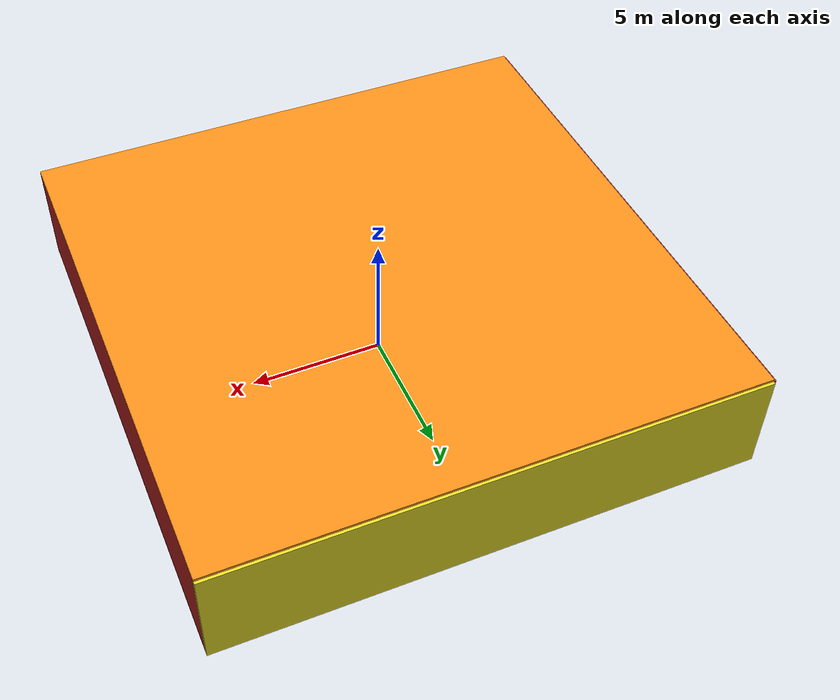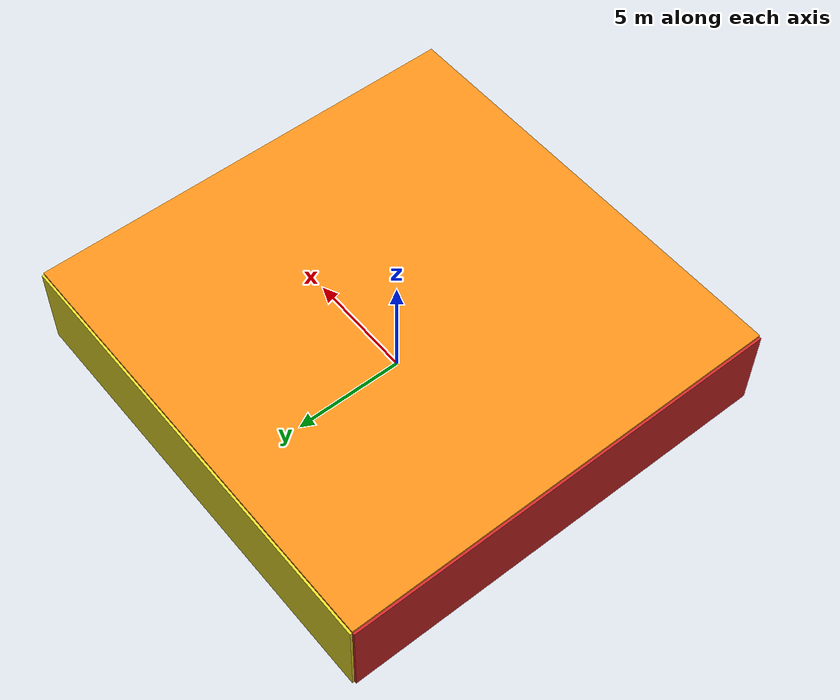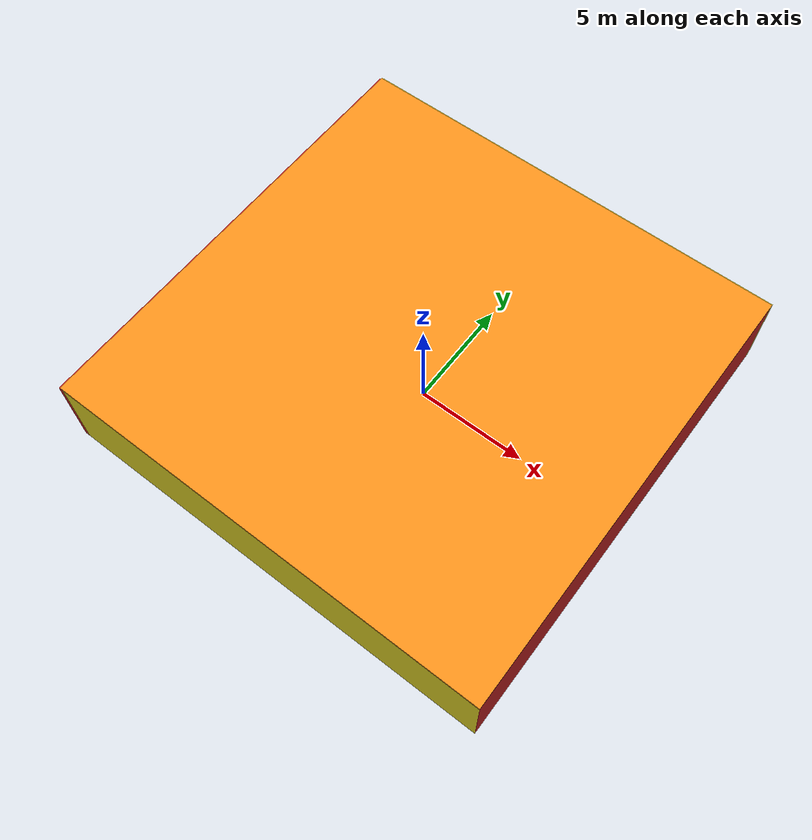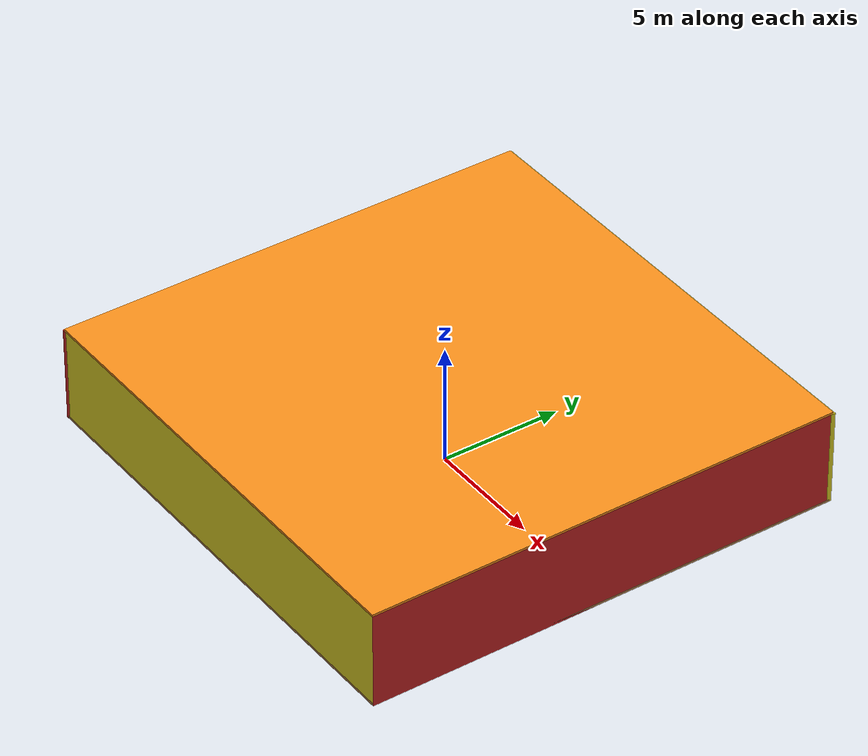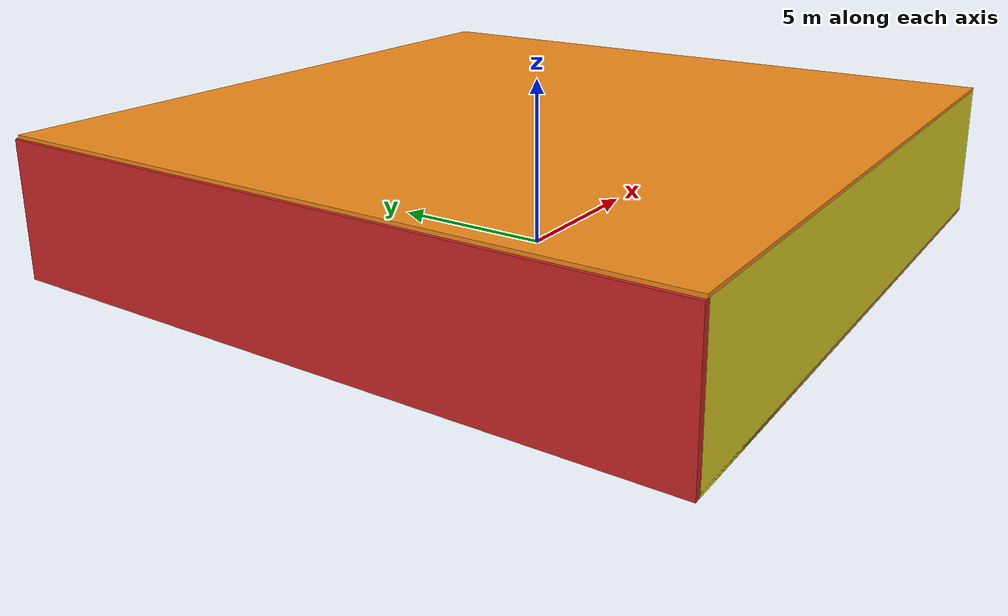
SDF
<sdf version="1.4">
 <world name="default">
  <physics type="ode">
   <max_step_size>0.001</max_step_size>
   <real_time_factor>1</real_time_factor>
   <real_time_update_rate>1000</real_time_update_rate>
   <gravity>0 0 -9.8</gravity>
  </physics>
  <scene><ambient>0.4 0.4 0.4 1</ambient><background>0.7 0.7 0.7 1</background><shadows>1</shadows></scene>
  <model name="Surrounding">
   <static>1</static>
   <link name="Ceiling">
    <collision name="Ceiling_Collision"><geometry><box><size>20 20 0.1</size></box></geometry></collision>
    <visual name="Ceiling_Visual">
     <geometry><box><size>20 20 0.1</size></box></geometry>
     <material>
      <script><uri>file://media/materials/scripts/gazebo.material</uri><name>Gazebo/Orange</name></script>
     </material>
    </visual>
    <pose>0 0 4.05 0 0 0</pose>
   </link>
   <link name="Wall_South">
    <collision name="Wall_South_Collision">
     <geometry><box><size>20 0 4</size></box></geometry>
     <pose>0 0 2 0 -0 0</pose>
    </collision>
    <visual name="Wall_South_Visual">
     <pose>0 0 2 0 -0 0</pose>
     <geometry><box><size>20 0 4</size></box></geometry>
     <material>
      <script><uri>file://media/materials/scripts/gazebo.material</uri><name>Gazebo/YellowGlow</name></script>
     </material>
    </visual>
    <velocity_decay><linear>0</linear><angular>0</angular></velocity_decay>
    <pose>0 -10 0 0 -0 0</pose>
   </link>
   <link name="Wall_East">
    <collision name="Wall_21_Collision">
     <geometry><box><size>20 0 4</size></box></geometry>
     <pose>0 0 2 0 -0 0</pose>
    </collision>
    <visual name="Wall_21_Visual">
     <pose>0 0 2 0 -0 0</pose>
     <geometry><box><size>20 0 4</size></box></geometry>
     <material>
      <script><uri>file://media/materials/scripts/gazebo.material</uri><name>Gazebo/RedBright</name></script>
     </material>
    </visual>
    <velocity_decay><linear>0</linear><angular>0</angular></velocity_decay>
    <pose>10 0 0 0 -0 1.5708</pose>
   </link>
   <link name="Wall_North">
    <collision name="Wall_22_Collision">
     <geometry><box><size>20 0.2 4</size></box></geometry>
     <pose>0 0 2 0 -0 0</pose>
    </collision>
    <visual name="Wall_22_Visual">
     <pose>0 0 2 0 -0 0</pose>
     <geometry><box><size>20 0.2 4</size></box></geometry>
     <material>
      <script><uri>file://media/materials/scripts/gazebo.material</uri><name>Gazebo/Yellow</name></script>
     </material>
    </visual>
    <velocity_decay><linear>0</linear><angular>0</angular></velocity_decay>
    <pose>0 10 0 0 -0 0</pose>
   </link>
   <link name="Wall_West">
    <collision name="Wall_23_Collision">
     <geometry><box><size>20 0.2 4</size></box></geometry>
     <pose>0 0 2 0 -0 0</pose>
    </collision>
    <visual name="Wall_23_Visual">
     <pose>0 0 2 0 -0 0</pose>
     <geometry><box><size>20 0.2 4</size></box></geometry>
     <material>
      <script><uri>file://media/materials/scripts/gazebo.material</uri><name>Gazebo/Red</name></script>
     </material>
    </visual>
    <velocity_decay><linear>0</linear><angular>0</angular></velocity_decay>
    <pose>-10 0 0 0 0 -1.5708</pose>
   </link>
   <link name="Ground_link">
    <collision name="collision">
     <pose>0 0 .05 0 -0 0</pose>
     <geometry><box><size>20 20 0.1</size></box></geometry>
    </collision>
    <visual name="visual">
     <pose>0 0 .05 0 -0 0</pose>
     <geometry><box><size>20 20 0.1</size></box></geometry>
     <material>
      <script><uri>file://media/materials/scripts/gazebo.material</uri><name>Gazebo/Wood</name></script>
     </material>
    </visual>
   </link>
   <static>1</static>
  </model>
  <spherical_coordinates>
   <surface_model>EARTH_WGS84</surface_model>
   <latitude_deg>0</latitude_deg>
   <longitude_deg>0</longitude_deg>
   <elevation>0</elevation>
   <heading_deg>0</heading_deg>
  </spherical_coordinates>
  <light name="lightball_0" type="diffuse">
   <diffuse>0.8 0.8 0.8 1</diffuse>
   <specular>0.2 0.2 0.2 1</specular>
   <attenuation>
    <range>100</range>
    <constant>0.7</constant>
    <linear>0.01</linear>
    <quadratic>0.001</quadratic>
   </attenuation>
   <direction>-0.5 0.1 -0.9</direction>
   <pose>-2.54640726884 0.901653164756 2.45208362192 0 0 0</pose>
  </light>
  <light name="lightball_1" type="diffuse">
   <diffuse>0.8 0.8 0.8 1</diffuse>
   <specular>0.2 0.2 0.2 1</specular>
   <attenuation>
    <range>100</range>
    <constant>0.7</constant>
    <linear>0.01</linear>
    <quadratic>0.001</quadratic>
   </attenuation>
   <direction>-0.5 0.1 -0.9</direction>
   <pose>-7.29291111571 8.48197829202 2.81653051402 0 0 0</pose>
  </light>
  <light name="lightball_2" type="diffuse">
   <diffuse>0.8 0.8 0.8 1</diffuse>
   <specular>0.2 0.2 0.2 1</specular>
   <attenuation>
    <range>100</range>
    <constant>0.7</constant>
    <linear>0.01</linear>
    <quadratic>0.001</quadratic>
   </attenuation>
   <direction>-0.5 0.1 -0.9</direction>
   <pose>-5.95249671 6.45944621787 2.65734745327 0 0 0</pose>
  </light>
  <light name="lightball_3" type="diffuse">
   <diffuse>0.8 0.8 0.8 1</diffuse>
   <specular>0.2 0.2 0.2 1</specular>
   <attenuation>
    <range>100</range>
    <constant>0.7</constant>
    <linear>0.01</linear>
    <quadratic>0.001</quadratic>
   </attenuation>
   <direction>-0.5 0.1 -0.9</direction>
   <pose>-0.462185788272 1.4933439312 1.75337291283 0 0 0</pose>
  </light>
  <light name="lightball_4" type="diffuse">
   <diffuse>0.8 0.8 0.8 1</diffuse>
   <specular>0.2 0.2 0.2 1</specular>
   <attenuation>
    <range>100</range>
    <constant>0.7</constant>
    <linear>0.01</linear>
    <quadratic>0.001</quadratic>
   </attenuation>
   <direction>-0.5 0.1 -0.9</direction>
   <pose>4.48885098151 -9.65164544225 2.28325655709 0 0 0</pose>
  </light>
  <include><uri>model://cabinet</uri><pose>-5.38303633006 -6.84288759186 0 0 0 1.2861922675</pose></include>
  <include><uri>model://cabinet</uri><pose>3.34900752067 -1.99221612651 0 0 0 0.712915403425</pose></include>
  <include>
   <uri>model://robocup_3Dsim_goal</uri>
   <pose>7.13336671561 0.480824668616 0 0 0 0.373148641911</pose>
  </include>
 </world>
</sdf>

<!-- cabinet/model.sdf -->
<sdf version="1.5">
  <model name="cabinet">
    <static>true</static>
    <link name="cabinet_bottom_plate">
      <inertial>
        <pose>0 0 -1 0 0 0</pose>
        <inertia>
          <ixx>2.050000</ixx>
          <ixy>0</ixy>
          <ixz>0</ixz>
          <iyy>2.050000</iyy>
          <iyz>0</iyz>
          <izz>2.050000</izz>
        </inertia>
        <mass>25.000000</mass>
      </inertial>
      <collision name="cabinet_bottom_plate_geom">
        <pose>0 0 0.010000 0 0 0</pose>
        <geometry>
          <box>
            <size>0.450000 0.450000 0.020000</size>
          </box>
        </geometry>
      </collision>
      <visual name="cabinet_bottom_plate_geom_visual">
        <pose>0 0 0.010000 0 0 0</pose>
        <geometry>
          <box>
            <size>0.450000 0.450000 0.020000</size>
          </box>
        </geometry>
        <material>
          <script>
            <uri>model://media/materials/scripts/gazebo.material</uri>
            <name>Gazebo/Wood</name>
          </script>
        </material>
      </visual>
      <collision name="cabinet_bottom_plate_geom_cabinet_back_plate">
        <pose>0.235000 0 0.510000 0 0 0</pose>
        <geometry>
          <box>
            <size>0.020000 0.450000 1.020000</size>
          </box>
        </geometry>
      </collision>
      <visual name="cabinet_bottom_plate_geom_cabinet_back_plate_visual">
        <pose>0.235000 0 0.510000 0 0 0</pose>
        <geometry>
          <box>
            <size>0.020000 0.450000 1.020000</size>
          </box>
        </geometry>
        <material>
          <script>
            <uri>model://media/materials/scripts/gazebo.material</uri>
            <name>Gazebo/Wood</name>
          </script>
        </material>
      </visual>
      <collision name="cabinet_bottom_plate_geom_cabinet_left_plate">
        <pose>0 0.235000 0.510000 0 0 0</pose>
        <geometry>
          <box>
            <size>0.450000 0.020000 1.020000</size>
          </box>
        </geometry>
      </collision>
      <visual name="cabinet_bottom_plate_geom_cabinet_left_plate_visual">
        <pose>0 0.235000 0.510000 0 0 0</pose>
        <geometry>
          <box>
            <size>0.450000 0.020000 1.020000</size>
          </box>
        </geometry>
        <material>
          <script>
            <uri>model://media/materials/scripts/gazebo.material</uri>
            <name>Gazebo/Wood</name>
          </script>
        </material>
      </visual>
      <collision name="cabinet_bottom_plate_geom_cabinet_middle_plate">
        <pose>0 0 0.510000 0 0 0</pose>
        <geometry>
          <box>
            <size>0.450000 0.450000 0.020000</size>
          </box>
        </geometry>
      </collision>
      <visual name="cabinet_bottom_plate_geom_cabinet_middle_plate_visual">
        <pose>0 0 0.510000 0 0 0</pose>
        <geometry>
          <box>
            <size>0.450000 0.450000 0.020000</size>
          </box>
        </geometry>
        <material>
          <script>
            <uri>model://media/materials/scripts/gazebo.material</uri>
            <name>Gazebo/Wood</name>
          </script>
        </material>
      </visual>
      <collision name="cabinet_bottom_plate_geom_cabinet_right_plate">
        <pose>0 -0.235000 0.510000 0 0 0</pose>
        <geometry>
          <box>
            <size>0.450000 0.020000 1.020000</size>
          </box>
        </geometry>
      </collision>
      <visual name="cabinet_bottom_plate_geom_cabinet_right_plate_visual">
        <pose>0 -0.235000 0.510000 0 0 0</pose>
        <geometry>
          <box>
            <size>0.450000 0.020000 1.020000</size>
          </box>
        </geometry>
        <material>
          <script>
            <uri>model://media/materials/scripts/gazebo.material</uri>
            <name>Gazebo/Wood</name>
          </script>
        </material>
      </visual>
      <collision name="cabinet_bottom_plate_geom_cabinet_top_plate">
        <pose>0 0 1.010000 0 0 0</pose>
        <geometry>
          <box>
            <size>0.450000 0.450000 0.020000</size>
          </box>
        </geometry>
      </collision>
      <visual name="cabinet_bottom_plate_geom_cabinet_top_plate_visual">
        <pose>0 0 1.010000 0 0 0</pose>
        <geometry>
          <box>
            <size>0.450000 0.450000 0.020000</size>
          </box>
        </geometry>
        <material>
          <script>
            <uri>model://media/materials/scripts/gazebo.material</uri>
            <name>Gazebo/Wood</name>
          </script>
        </material>
      </visual>
    </link>
  </model>
</sdf>

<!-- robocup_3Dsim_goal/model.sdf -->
<sdf version="1.5">
  <model name="robocup_3d_goal">
    <static>true</static>
    <link name="left_post">
      <pose>0 1.05 0.45 0 0 0</pose>
      <collision name="collision">
        <geometry>
          <cylinder>
            <radius>0.05</radius>
            <length>0.9</length>
          </cylinder>
        </geometry>
      </collision>
      <visual name="visual">
        <geometry>
          <cylinder>
            <radius>0.05</radius>
            <length>0.9</length>
          </cylinder>
        </geometry>
        <material>
          <script>
            <uri>file://media/materials/scripts/gazebo.material</uri>
            <name>Gazebo/ZincYellow</name>
          </script>
        </material>
      </visual>
    </link>
    <link name="left_support_horiz_lower">
      <pose>0.30 1.05 0.01 0 0 0</pose>
      <collision name="collision">
        <geometry>
          <box>
            <size>0.50 0.02 0.02</size>
          </box>
        </geometry>
      </collision>
      <visual name="visual">
        <geometry>
          <box>
            <size>0.50 0.02 0.02</size>
          </box>
        </geometry>
        <material>
          <script>
            <uri>file://media/materials/scripts/gazebo.material</uri>
            <name>Gazebo/White</name>
          </script>
        </material>
      </visual>
    </link>
    <link name="left_support_horiz_upper">
      <pose>0.30 1.05 0.79 0 0 0</pose>
      <collision name="collision">
        <geometry>
          <box>
            <size>0.50 0.02 0.02</size>
          </box>
        </geometry>
      </collision>
      <visual name="visual">
        <geometry>
          <box>
            <size>0.50 0.02 0.02</size>
          </box>
        </geometry>
        <material>
          <script>
            <uri>file://media/materials/scripts/gazebo.material</uri>
            <name>Gazebo/White</name>
          </script>
        </material>
      </visual>
    </link>
    <link name="left_support_vertical">
      <pose>0.56 1.05 0.4 0 1.5708 0</pose>
      <collision name="collision">
        <geometry>
          <box>
            <size>0.80 0.02 0.02</size>
          </box>
        </geometry>
      </collision>
      <visual name="visual">
        <geometry>
          <box>
            <size>0.80 0.02 0.02</size>
          </box>
        </geometry>
        <material>
          <script>
            <uri>file://media/materials/scripts/gazebo.material</uri>
            <name>Gazebo/White</name>
          </script>
        </material>
      </visual>
    </link>
    <link name="right_support_horiz_lower">
      <pose>0.30 -1.05 0.01 0 0 0</pose>
      <collision name="collision">
        <geometry>
          <box>
            <size>0.50 0.02 0.02</size>
          </box>
        </geometry>
      </collision>
      <visual name="visual">
        <geometry>
          <box>
            <size>0.50 0.02 0.02</size>
          </box>
        </geometry>
        <material>
          <script>
            <uri>file://media/materials/scripts/gazebo.material</uri>
            <name>Gazebo/White</name>
          </script>
        </material>
      </visual>
    </link>
    <link name="right_support_horiz_upper">
      <pose>0.30 -1.05 0.79 0 0 0</pose>
      <collision name="collision">
        <geometry>
          <box>
            <size>0.50 0.02 0.02</size>
          </box>
        </geometry>
      </collision>
      <visual name="visual">
        <geometry>
          <box>
            <size>0.50 0.02 0.02</size>
          </box>
        </geometry>
        <material>
          <script>
            <uri>file://media/materials/scripts/gazebo.material</uri>
            <name>Gazebo/White</name>
          </script>
        </material>
      </visual>
    </link>
    <link name="right_support_vertical">
      <pose>0.56 -1.05 0.4 0 1.5708 0</pose>
      <collision name="collision">
        <geometry>
          <box>
            <size>0.80 0.02 0.02</size>
          </box>
        </geometry>
      </collision>
      <visual name="visual">
        <geometry>
          <box>
            <size>0.80 0.02 0.02</size>
          </box>
        </geometry>
        <material>
          <script>
            <uri>file://media/materials/scripts/gazebo.material</uri>
            <name>Gazebo/White</name>
          </script>
        </material>
      </visual>
    </link>
    <link name="center_support_horiz_lower">
      <pose>0.56 0 0.01 0 1.5708 0</pose>
      <collision name="collision">
        <geometry>
          <box>
            <size>0.02 2.08 0.02</size>
          </box>
        </geometry>
      </collision>
      <visual name="visual">
        <geometry>
          <box>
            <size>0.02 2.08 0.02</size>
          </box>
        </geometry>
        <material>
          <script>
            <uri>file://media/materials/scripts/gazebo.material</uri>
            <name>Gazebo/White</name>
          </script>
        </material>
      </visual>
    </link>
    <link name="center_support_horiz_upper">
      <pose>0.56 0 0.79 0 1.5708 0</pose>
      <collision name="collision">
        <geometry>
          <box>
            <size>0.02 2.08 0.02</size>
          </box>
        </geometry>
      </collision>
      <visual name="visual">
        <geometry>
          <box>
            <size>0.02 2.08 0.02</size>
          </box>
        </geometry>
        <material>
          <script>
            <uri>file://media/materials/scripts/gazebo.material</uri>
            <name>Gazebo/White</name>
          </script>
        </material>
      </visual>
    </link>
    <link name="right_post">
      <pose>0 -1.05 0.45 0 0 0</pose>
      <collision name="collision">
        <geometry>
          <cylinder>
            <radius>0.05</radius>
            <length>0.9</length>
          </cylinder>
        </geometry>
      </collision>
      <visual name="visual">
        <geometry>
          <cylinder>
            <radius>0.05</radius>
            <length>0.9</length>
          </cylinder>
        </geometry>
        <material>
          <script>
            <uri>file://media/materials/scripts/gazebo.material</uri>
            <name>Gazebo/ZincYellow</name>
          </script>
        </material>
      </visual>
    </link>
    <link name="crossbar">
      <pose>0 0 0.85 1.57 1.57 0</pose>
      <collision name="collision">
        <geometry>
          <cylinder>
            <radius>0.05</radius>
            <length>2.0</length>
          </cylinder>
        </geometry>
      </collision>
      <visual name="visual">
        <geometry>
          <cylinder>
            <radius>0.05</radius>
            <length>2.0</length>
          </cylinder>
        </geometry>
        <material>
          <script>
            <uri>file://media/materials/scripts/gazebo.material</uri>
            <name>Gazebo/ZincYellow</name>
          </script>
        </material>
      </visual>
    </link>
    <link name="center_net">
      <pose>0.56 0 0.40 0 0 0</pose>
      <collision name="collision">
        <geometry>
          <box>
            <size>0.01 2.1 0.80</size>
          </box>
        </geometry>
      </collision>
      <visual name="visual">
        <geometry>
          <box>
            <size>0.01 2.1 0.80</size>
          </box>
        </geometry>
        <material>
          <script>
            <uri>model://../model_source/models/robocup09_spl_field/materials/scripts/</uri>
            <uri>model://../model_source/models/robocup09_spl_field/materials/textures/</uri>
            <name>RoboCup/Net</name>
          </script>
        </material>
      </visual>
    </link>
    <link name="left_net">
      <pose>0.30 1.05 0.40 0 0 0</pose>
      <collision name="collision">
        <geometry>
          <box>
            <size>0.50 0.01 0.76</size>
          </box>
        </geometry>
      </collision>
      <visual name="visual">
        <geometry>
          <box>
            <size>0.50 0.01 0.76</size>
          </box>
        </geometry>
        <material>
          <script>
            <uri>model://../model_source/models/robocup09_spl_field/materials/scripts/</uri>
            <uri>model://../model_source/models/robocup09_spl_field/materials/textures/</uri>
            <name>RoboCup/Net</name>
          </script>
        </material>
      </visual>
    </link>
    <link name="right_net">
      <pose>0.30 -1.05 0.40 0 0 0</pose>
      <collision name="collision">
        <geometry>
          <box>
            <size>0.50 0.01 0.76</size>
          </box>
        </geometry>
      </collision>
      <visual name="visual">
        <geometry>
          <box>
            <size>0.50 0.01 0.76</size>
          </box>
        </geometry>
        <material>
          <script>
            <uri>model://../model_source/models/robocup09_spl_field/materials/scripts/</uri>
            <uri>model://../model_source/models/robocup09_spl_field/materials/textures/</uri>
            <name>RoboCup/Net</name>
          </script>
        </material>
      </visual>
    </link>
  </model>
</sdf>
